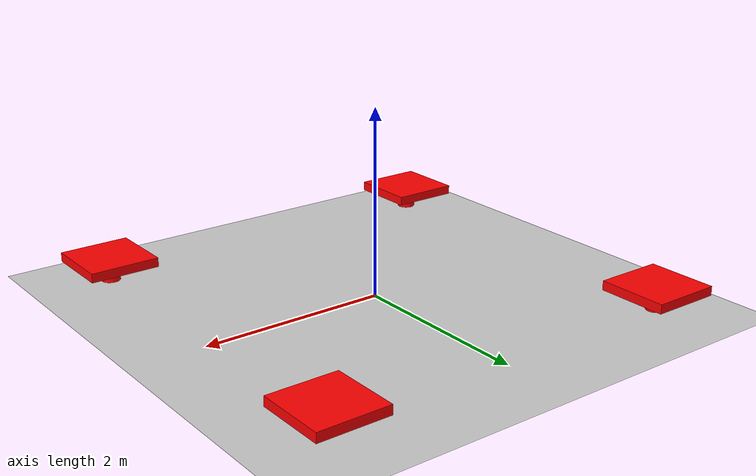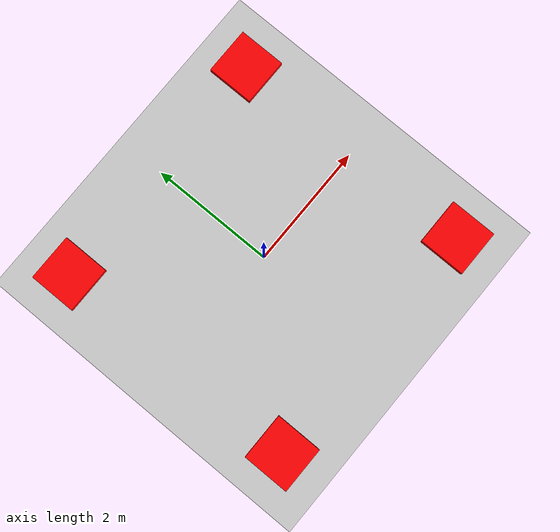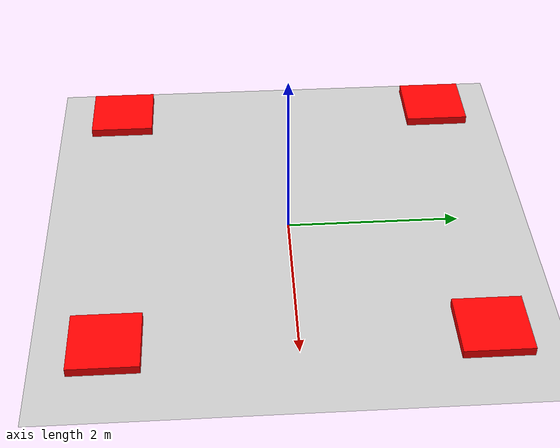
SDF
<?xml version="1.0"?>
<sdf version="1.6">
  <world name="default">
    <physics name="default_physics" default="0" type="ode">
      <max_step_size>0.001</max_step_size>
      <real_time_factor>1</real_time_factor>
      <real_time_update_rate>1000</real_time_update_rate>
      <ode>
        <solver>
          <type>quick</type>
          <iters>50</iters>
          <sor>1.0</sor> <!-- Important, see issue #2209 -->
          <use_dynamic_moi_rescaling>false</use_dynamic_moi_rescaling>
        </solver>
      </ode>
    </physics>
    <include>
      <uri>model://ground_plane</uri>
    </include>
    <include>
      <uri>model://sun</uri>
    </include>
    <model name="weight_scales">
      <!-- scale sensor and link for driver side front -->
      <link name="scale_driverside_front">
        <pose>2 2 .25 0 0 0</pose>
        <inertial>
          <inertia>
            <ixx>0.100000</ixx>
            <ixy>0.000000</ixy>
            <ixz>0.000000</ixz>
            <iyy>0.100000</iyy>
            <iyz>0.000000</iyz>
            <izz>0.100000</izz>
          </inertia>
          <mass>394.176</mass>
        </inertial>
        <visual name="visual_box">
          <geometry>
            <box>
              <size>.75 .75 .1</size>
            </box>
          </geometry>
          <material>
            <ambient>1 0 0 1</ambient>
            <diffuse>1 0 0 1</diffuse>
            <specular>0.1 0.1 0.1 1</specular>
            <emissive>0 0 0 0</emissive>
          </material>
        </visual>
        <visual name="visual_cylinder">
          <pose>0 0 -0.125 0 0 0</pose>
          <geometry>
            <cylinder>
              <radius>0.100000</radius>
              <length>.2</length>
            </cylinder>
          </geometry>
          <material>
            <ambient>1 0 0 1</ambient>
            <diffuse>1 0 0 1</diffuse>
            <specular>0.1 0.1 0.1 1</specular>
            <emissive>0 0 0 0</emissive>
          </material>
        </visual>
        <collision name="collision_box">
          <max_contacts>250</max_contacts>
          <geometry>
            <box>
              <size>.75 .75 .1</size>
            </box>
          </geometry>
        </collision>
      </link>
      <joint name="joint_01" type="revolute">
        <parent>world</parent>
        <child>scale_driverside_front</child>
        <pose>0 0 -0.25 0 0 0</pose>
        <axis>
          <limit>
            <lower>-1.57079</lower>
            <upper>1.57079</upper>
          </limit>
          <dynamics>
            <damping>0.000000</damping>
            <friction>0.000000</friction>
          </dynamics>
          <xyz>1.000000 0.000000 0.000000</xyz>
        </axis>
        <sensor name="force_torque_frds" type="force_torque">
          <update_rate>5</update_rate>
        </sensor>
      </joint>
      <!-- scale sensor and link for passenger side front -->
            <link name="scale_passengerside_front">
        <pose>2 -2 .25 0 0 0</pose>
        <inertial>
          <inertia>
            <ixx>0.100000</ixx>
            <ixy>0.000000</ixy>
            <ixz>0.000000</ixz>
            <iyy>0.100000</iyy>
            <iyz>0.000000</iyz>
            <izz>0.100000</izz>
          </inertia>
          <mass>370.135</mass>
        </inertial>
        <visual name="visual_box">
          <geometry>
            <box>
              <size>.75 .75 .1</size>
            </box>
          </geometry>
          <material>
            <ambient>1 0 0 1</ambient>
            <diffuse>1 0 0 1</diffuse>
            <specular>0.1 0.1 0.1 1</specular>
            <emissive>0 0 0 0</emissive>
          </material>
        </visual>
        <visual name="visual_cylinder">
          <pose>0 0 -0.125 0 0 0</pose>
          <geometry>
            <cylinder>
              <radius>0.100000</radius>
              <length>.2</length>
            </cylinder>
          </geometry>
          <material>
            <ambient>1 0 0 1</ambient>
            <diffuse>1 0 0 1</diffuse>
            <specular>0.1 0.1 0.1 1</specular>
            <emissive>0 0 0 0</emissive>
          </material>
        </visual>
        <collision name="collision_box">
          <max_contacts>250</max_contacts>
          <geometry>
            <box>
              <size>.75 .75 .1</size>
            </box>
          </geometry>
        </collision>
      </link>
      <joint name="joint_02" type="revolute">
        <parent>world</parent>
        <child>scale_passengerside_front</child>
        <pose>0 0 -0.25 0 0 0</pose>
        <axis>
          <limit>
            <lower>-1.57079</lower>
            <upper>1.57079</upper>
          </limit>
          <dynamics>
            <damping>0.000000</damping>
            <friction>0.000000</friction>
          </dynamics>
          <xyz>1.000000 0.000000 0.000000</xyz>
        </axis>
        <sensor name="force_torque_frps" type="force_torque">
          <update_rate>5</update_rate>
        </sensor>
      </joint>
      <!-- scale sensor and link for driver side rear -->
      <link name="scale_driverside_rear">
        <pose>-2 -2 .25 0 0 0</pose>
        <inertial>
          <inertia>
            <ixx>0.100000</ixx>
            <ixy>0.000000</ixy>
            <ixz>0.000000</ixz>
            <iyy>0.100000</iyy>
            <iyz>0.000000</iyz>
            <izz>0.100000</izz>
          </inertia>
          <mass>273.065</mass>
        </inertial>
        <visual name="visual_box">
          <geometry>
            <box>
              <size>.75 .75 .1</size>
            </box>
          </geometry>
          <material>
            <ambient>1 0 0 1</ambient>
            <diffuse>1 0 0 1</diffuse>
            <specular>0.1 0.1 0.1 1</specular>
            <emissive>0 0 0 0</emissive>
          </material>
        </visual>
        <visual name="visual_cylinder">
          <pose>0 0 -0.125 0 0 0</pose>
          <geometry>
            <cylinder>
              <radius>0.100000</radius>
              <length>.2</length>
            </cylinder>
          </geometry>
          <material>
            <ambient>1 0 0 1</ambient>
            <diffuse>1 0 0 1</diffuse>
            <specular>0.1 0.1 0.1 1</specular>
            <emissive>0 0 0 0</emissive>
          </material>
        </visual>
        <collision name="collision_box">
          <max_contacts>250</max_contacts>
          <geometry>
            <box>
              <size>.75 .75 .1</size>
            </box>
          </geometry>
        </collision>
      </link>
      <joint name="joint_03" type="revolute">
        <parent>world</parent>
        <child>scale_driverside_rear</child>
        <pose>0 0 -0.25 0 0 0</pose>
        <axis>
          <limit>
            <lower>-1.57079</lower>
            <upper>1.57079</upper>
          </limit>
          <dynamics>
            <damping>0.000000</damping>
            <friction>0.000000</friction>
          </dynamics>
          <xyz>1.000000 0.000000 0.000000</xyz>
        </axis>
        <sensor name="force_torque_rds" type="force_torque">
          <update_rate>5</update_rate>
        </sensor>
      </joint>
      <!-- scale sensor and link for passenger side rear -->
      <link name="scale_passengerside_rear">
        <pose>-2 2 .25 0 0 0</pose>
        <inertial>
          <inertia>
            <ixx>0.100000</ixx>
            <ixy>0.000000</ixy>
            <ixz>0.000000</ixz>
            <iyy>0.100000</iyy>
            <iyz>0.000000</iyz>
            <izz>0.100000</izz>
          </inertia>
          <mass>260.818</mass>
        </inertial>
        <visual name="visual_box">
          <geometry>
            <box>
              <size>.75 .75 .1</size>
            </box>
          </geometry>
          <material>
            <ambient>1 0 0 1</ambient>
            <diffuse>1 0 0 1</diffuse>
            <specular>0.1 0.1 0.1 1</specular>
            <emissive>0 0 0 0</emissive>
          </material>
        </visual>
        <visual name="visual_cylinder">
          <pose>0 0 -0.125 0 0 0</pose>
          <geometry>
            <cylinder>
              <radius>0.100000</radius>
              <length>.2</length>
            </cylinder>
          </geometry>
          <material>
            <ambient>1 0 0 1</ambient>
            <diffuse>1 0 0 1</diffuse>
            <specular>0.1 0.1 0.1 1</specular>
            <emissive>0 0 0 0</emissive>
          </material>
        </visual>
        <collision name="collision_box">
          <max_contacts>250</max_contacts>
          <geometry>
            <box>
              <size>.75 .75 .1</size>
            </box>
          </geometry>
        </collision>
      </link>
      <joint name="joint_04" type="revolute">
        <parent>world</parent>
        <child>scale_passengerside_rear</child>
        <pose>0 0 -0.25 0 0 0</pose>
        <axis>
          <limit>
            <lower>-1.57079</lower>
            <upper>1.57079</upper>
          </limit>
          <dynamics>
            <damping>0.000000</damping>
            <friction>0.000000</friction>
          </dynamics>
          <xyz>1.000000 0.000000 0.000000</xyz>
        </axis>
        <sensor name="force_torque_rps" type="force_torque">
          <update_rate>5</update_rate>
        </sensor>
      </joint>
    </model>
  </world>
</sdf>
